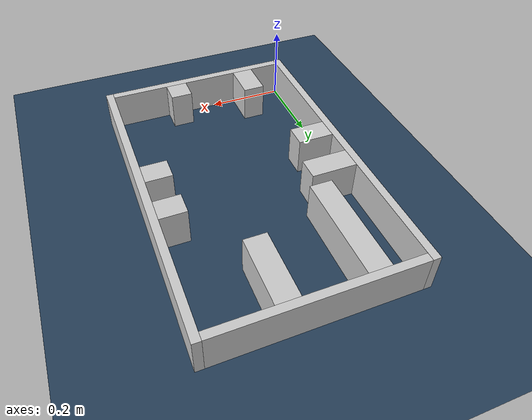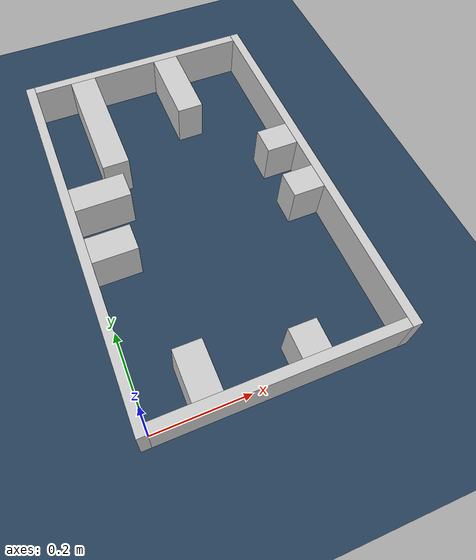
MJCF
<?xml version="1.0" ?>
<mujoco model="generated_real_template">
  <compiler angle="degree"/>
  <option timestep="0.002" integrator="implicitfast" iterations="100" cone="elliptic"/>
  <default>
    <geom density="1"/>
  </default>
  <asset>
    <texture builtin="gradient" height="3072" rgb1="0.3 0.5 0.7" rgb2="0 0 0" type="skybox" width="512"/>
    <texture builtin="checker" height="300" mark="edge" markrgb="0.8 0.8 0.8" name="groundplane" rgb1="0.2 0.3 0.4" rgb2="0.1 0.2 0.3" type="2d" width="300"/>
    <material name="groundplane" reflectance="0.2" texrepeat="5 5" texture="groundplane" texuniform="true"/>
  </asset>
  <worldbody>
    <light dir="0 0 -1" directional="true" pos="0 0 1.5"/>
    <geom name="floor" type="plane" condim="4" friction="0.5 0.005 0.001" material="groundplane" size="0 0 0.05"/>
    <body name="walls">
      <geom name="wall_boundary_left" type="box" condim="4" friction="1.0 0.005 0.0001" rgba="0.8 0.8 0.8 1" pos="-0.010000 0.387500 0.050000" euler="0 0 0.000000" size="0.010000 0.407500 0.050000"/>
      <geom name="wall_boundary_right" type="box" condim="4" friction="1.0 0.005 0.0001" rgba="0.8 0.8 0.8 1" pos="0.500000 0.387500 0.050000" euler="0 0 0.000000" size="0.010000 0.407500 0.050000"/>
      <geom name="wall_boundary_bottom" type="box" condim="4" friction="1.0 0.005 0.0001" rgba="0.8 0.8 0.8 1" pos="0.245000 -0.010000 0.050000" euler="0 0 0.000000" size="0.245000 0.010000 0.050000"/>
      <geom name="wall_boundary_top" type="box" condim="4" friction="1.0 0.005 0.0001" rgba="0.8 0.8 0.8 1" pos="0.245000 0.785000 0.050000" euler="0 0 0.000000" size="0.245000 0.010000 0.050000"/>
      <geom name="wall_inner_1_1" type="box" condim="4" friction="1.0 0.005 0.0001" rgba="0.8 0.8 0.8 1" pos="0.312201 0.028817 0.050000" euler="0 0 90.000000" size="0.028817 0.028500 0.050000"/>
      <geom name="wall_inner_1_2" type="box" condim="4" friction="1.0 0.005 0.0001" rgba="0.8 0.8 0.8 1" pos="0.312201 0.689975 0.050000" euler="0 0 90.000000" size="0.085025 0.028500 0.050000"/>
      <geom name="wall_inner_2_1" type="box" condim="4" friction="1.0 0.005 0.0001" rgba="0.8 0.8 0.8 1" pos="0.110178 0.048501 0.050000" euler="0 0 90.000000" size="0.048501 0.028500 0.050000"/>
      <geom name="wall_inner_2_2" type="box" condim="4" friction="1.0 0.005 0.0001" rgba="0.8 0.8 0.8 1" pos="0.110178 0.644040 0.050000" euler="0 0 90.000000" size="0.130960 0.028500 0.050000"/>
      <geom name="wall_inner_3_1" type="box" condim="4" friction="1.0 0.005 0.0001" rgba="0.8 0.8 0.8 1" pos="0.058499 0.457737 0.050000" euler="0 0 0.000000" size="0.058499 0.028500 0.050000"/>
      <geom name="wall_inner_3_2" type="box" condim="4" friction="1.0 0.005 0.0001" rgba="0.8 0.8 0.8 1" pos="0.456226 0.457737 0.050000" euler="0 0 0.000000" size="0.033774 0.028500 0.050000"/>
      <geom name="wall_inner_4_1" type="box" condim="4" friction="1.0 0.005 0.0001" rgba="0.8 0.8 0.8 1" pos="0.046167 0.334196 0.050000" euler="0 0 0.000000" size="0.046167 0.028500 0.050000"/>
      <geom name="wall_inner_4_2" type="box" condim="4" friction="1.0 0.005 0.0001" rgba="0.8 0.8 0.8 1" pos="0.456202 0.334196 0.050000" euler="0 0 0.000000" size="0.033798 0.028500 0.050000"/>
    </body>
  </worldbody>
</mujoco>
